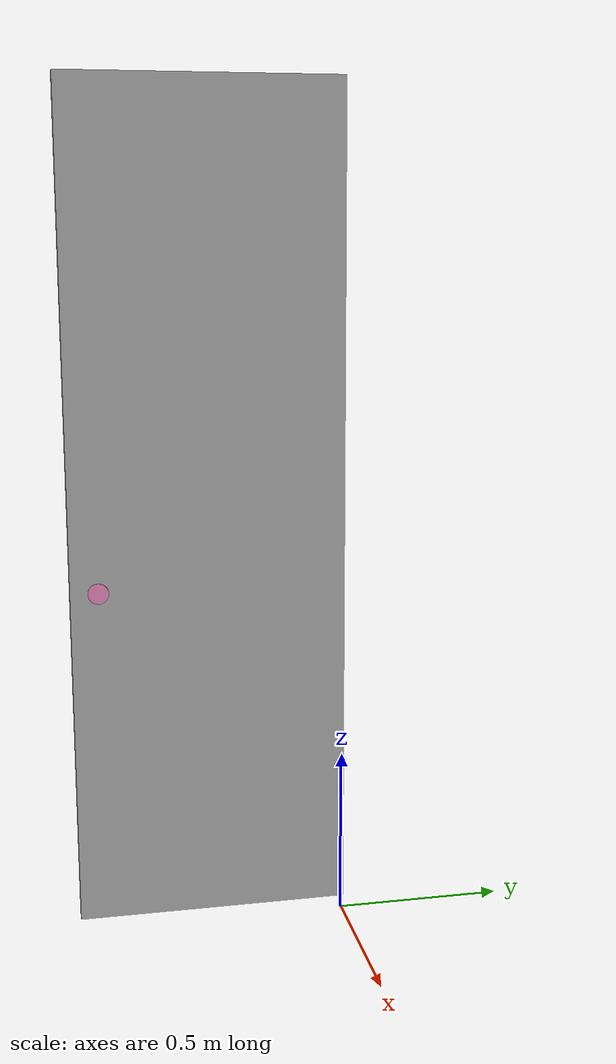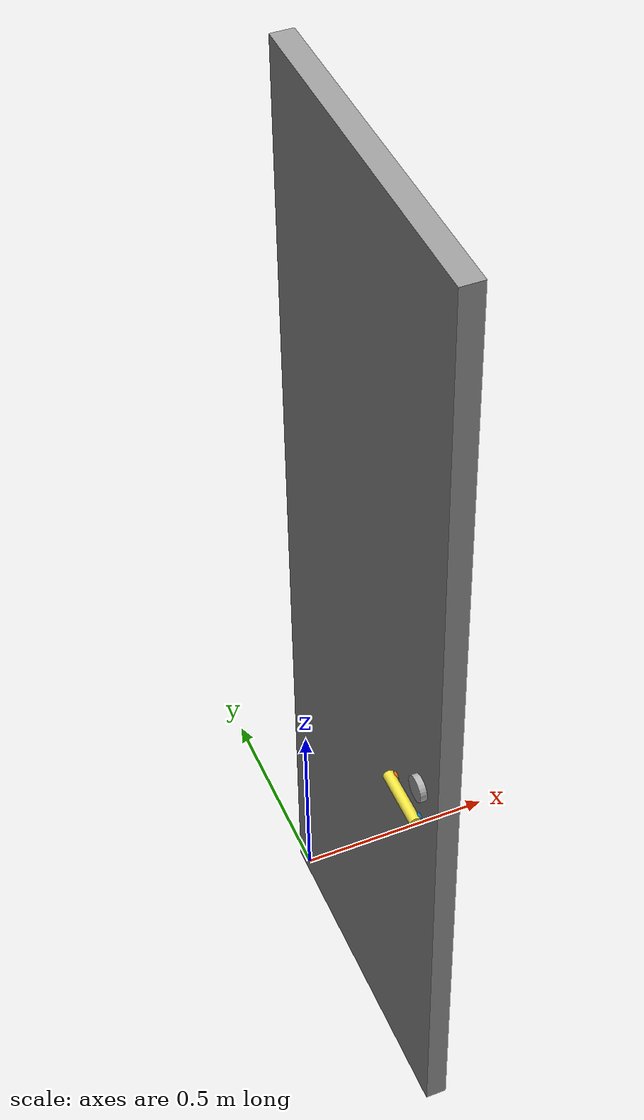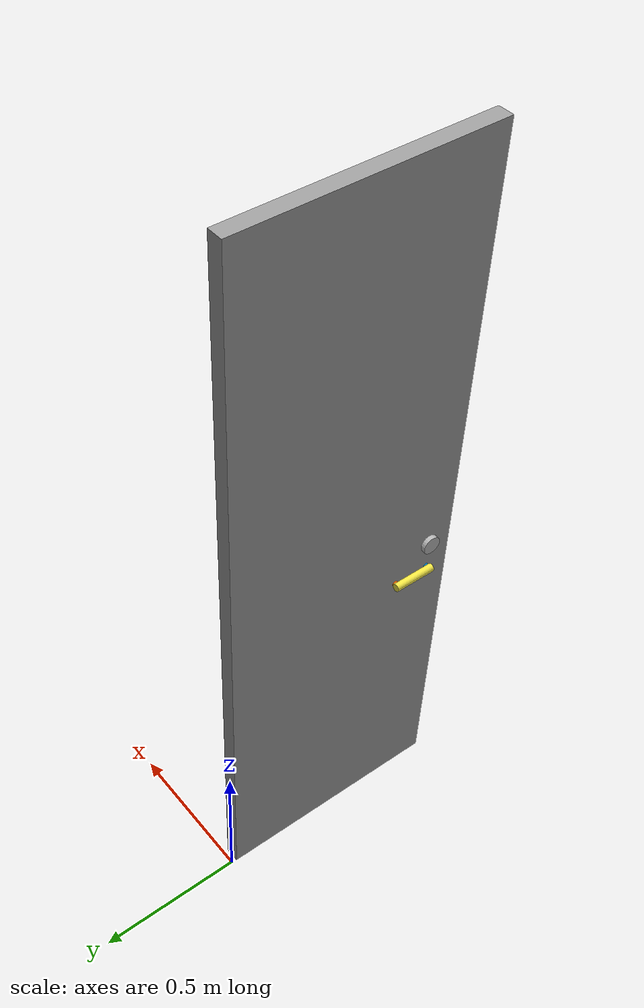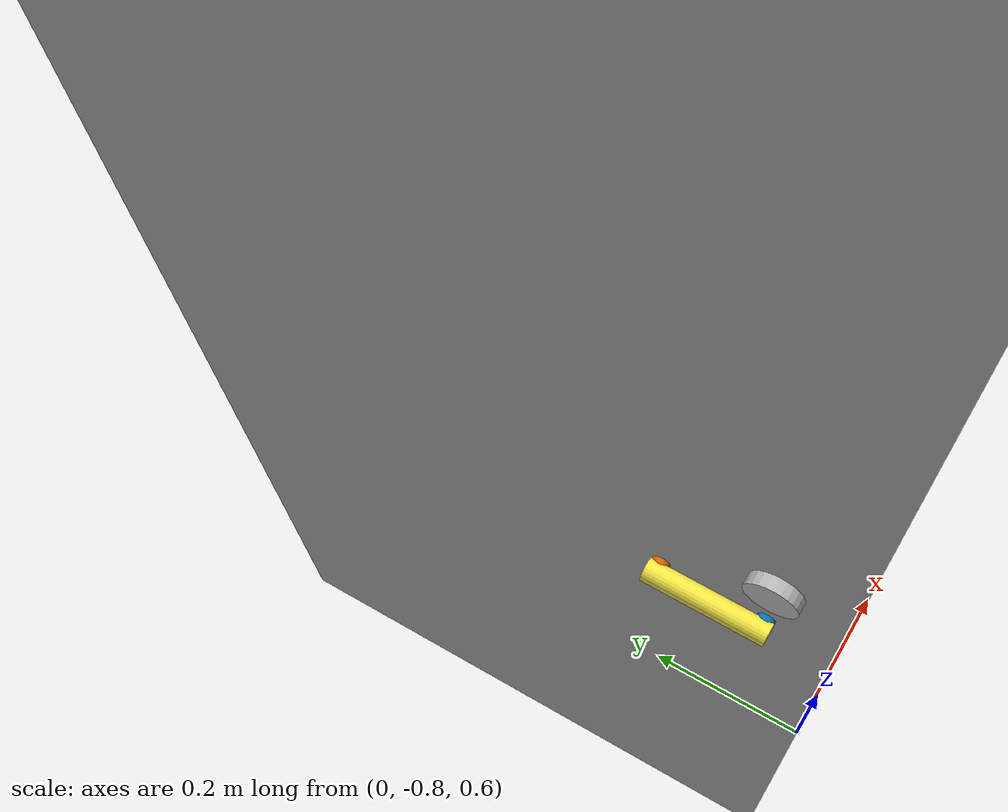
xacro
<?xml version="1.0"?>
<robot name="$(arg robot_name)" xmlns:xacro="http://www.ros.org/wiki/xacro">

  <!-- arguments passed in -->
  <xacro:arg name="door_bot_namespace" default="door_bot_ns" />
  <xacro:arg name="hinge_x" default="0" />
  <xacro:arg name="hinge_y" default="0" />
  <xacro:arg name="hinge_z" default="0" />
  <xacro:arg name="init_door_orientation" default="0" /> <!-- (rad) 0=door front perp. to X axis-->
  <xacro:arg name="door_width" default="0.80" />
  <xacro:arg name="door_height" default="2.43" />
  <xacro:arg name="door_thickness" default="0.05" />
  <xacro:arg name="door_width_collision_factor" default="0.90" />

  <!-- properties (variables) used throughout this file -->
  <xacro:property name="M_PI" value="3.1415926535897932" />
  <xacro:property name="width" value="$(arg door_width)" />
  <xacro:property name="height" value="$(arg door_height)" />
  <xacro:property name="thickness" value="$(arg door_thickness)" />
  <xacro:property name="handle_height" value="1.00" />
  <xacro:property name="handle_length" value="0.14" />
  <xacro:property name="width_collision_factor" value="$(arg door_width_collision_factor)" />

  <link name="world" />

  <joint name="floor_joint" type="fixed">
    <parent link="world" />
    <origin xyz="$(arg hinge_x) $(arg hinge_y) $(arg hinge_z)" rpy="0 0 0" />
    <child link="floor_link" />
  </joint>
  <link name="floor_link">
    <inertial>
      <mass value="100" />
      <inertia ixx="10" ixy="0"  ixz="0"
                        iyy="10" iyz="0"
                                 izz="10" />
    </inertial>
    <visual>
      <origin xyz="0 0 0" rpy="0 0 0" />
      <geometry name="floor_visual_geom">
        <box size="0.001 0.001 0.001" />
      </geometry>
    </visual>
    <collision>
      <origin xyz="0 0 0.001" rpy="0 0 0" />
      <geometry name="floor_collision_geom">
        <box size="0.001 0.001 0.001" />
      </geometry>
    </collision>
  </link>
  <gazebo reference="floor_link">
    <material>PR2/Grey</material>
    <mu1>50.0</mu1>
    <mu2>50.0</mu2>
    <kp>1000000000.0</kp>
    <kd>1.0</kd>
  </gazebo>

  <!-- the door itself -->
  <joint name="door_joint" type="continuous" >
    <parent link="floor_link" />
    <child link="door_link" />
    <origin xyz="0 0 0.05" rpy="0 0 $(arg init_door_orientation)" />
    <axis xyz="0 0 1" />
    <dynamics damping="0.7" />
  </joint>
  <link name="door_link">
    <inertial>
      <mass value="30" />
      <inertia  ixx="1.0" ixy="0.0"  ixz="0.0"
                          iyy="1.0"  iyz="0.0"
                                     izz="3.0" />
    </inertial>
    <visual >
      <origin xyz="0.0  ${-1.0*width/2.0}  ${height/2.0}" rpy="0 0 0" />
      <geometry name="sholder_roll_mesh_file">
        <box size="$(arg door_thickness) $(arg door_width) $(arg door_height)" />
      </geometry>
    </visual>
    <collision >
      <origin xyz="0.0  ${-1.0*width/2.0}  ${height/2.0}" rpy="0 0 0" />
      <geometry name="door_collision_geom">
        <box size="$(arg door_thickness) ${width_collision_factor*width} $(arg door_height)" />
      </geometry>
    </collision>
  </link>
  <gazebo reference="door_link">
    <material>PR2/Grey</material>
    <laserRetro>2000</laserRetro>
    <turnGravityOff>true</turnGravityOff>
    <selfCollide>false</selfCollide>
    <dampingFactor>0.01</dampingFactor>
  </gazebo>

  <!--  I have had trouble with the revolute type joints, so setting to fixed for now.
        This could be a gazebo 7 issue, or other error.   -->
  <joint name="handle_joint" type="fixed">
    <origin xyz="${-1.0*thickness+0.01} ${-0.90*width} ${handle_height}" rpy="${0*M_PI/2.0} 0 0" />
    <parent link="door_link" />
    <child link="handle_link" />
  </joint>
  <link name="handle_link">
    <inertial >
      <mass value="0.3" />
      <com xyz="0.0 ${handle_length/2-0.01} 0.0" />
      <inertia  ixx="0.01"  ixy="0.0"  ixz="0.0"
                            iyy="0.01" iyz="0.0"
                                       izz="0.01" />
    </inertial>
    <visual >
      <origin xyz="0.0 ${handle_length/2-0.01} 0.0" rpy="${1*M_PI/2} 0 0" />
      <geometry name="sholder_roll_mesh_file">
        <cylinder radius="0.013" length="${handle_length}" />
      </geometry>
    </visual>
    <collision >
      <origin xyz="0.0 ${handle_length/2-0.01} 0.0" rpy="${1*M_PI/2} 0 0" />
      <geometry name="handle_collision_geom">
        <cylinder radius="0.013" length="${handle_length}" />
      </geometry>
    </collision>
  </link>
  <gazebo reference="handle_link">
    <material>PR2/Handle</material>
    <laserRetro>3900.0</laserRetro>
    <mu1>50.0</mu1>
    <mu2>50.0</mu2>
    <kp>100000000.0</kp>
    <kd>1.0</kd>
    <turnGravityOff>true</turnGravityOff>
    <selfCollide>false</selfCollide>
    <dampingFactor>0.05</dampingFactor>
  </gazebo>

  <joint name="handle1_joint" type="fixed">
    <parent link="handle_link" />
    <origin xyz="0.0 0.0 0" rpy="0 0 0" />
    <child link="handle1_link" />
  </joint>
  <link name="handle1_link">
    <inertial >
      <mass value="0.1" />
      <com xyz="0.0 0.0 0.0" />
      <inertia  ixx="0.01"  ixy="0.0"  ixz="0.0"
                            iyy="0.01" iyz="0.0"
                                       izz="0.001" />
    </inertial>
    <visual >
      <origin xyz="0.025 0.0 0.0" rpy="0 ${1*M_PI/2.0} 0" />
      <geometry name="sholder_roll_mesh_file">
        <cylinder radius="0.01" length="0.05" />
      </geometry>
    </visual>
    <collision >
      <origin xyz="0.025 0.0 0.0" rpy="0 ${1*M_PI/2.0} 0" />
      <geometry name="handle1_collision_geom">
        <cylinder radius="0.01" length="0.05" />
      </geometry>
    </collision>
  </link>
  <gazebo reference="handle1_link">
    <material>PR2/Handle</material>
    <laserRetro>3900.0</laserRetro>
    <turnGravityOff>true</turnGravityOff>
    <selfCollide>false</selfCollide>
  </gazebo>

  <joint name="handle2_joint" type="fixed">
    <parent link="handle_link" />
    <origin xyz="0.0 0.12 0" rpy="0 0 0" />
    <child link="handle2_link" />
  </joint>
  <link name="handle2_link">
    <inertial >
      <mass value="0.1" />
      <com xyz="0.0 0.0 0.0" />
      <inertia  ixx="0.01"  ixy="0.0"  ixz="0.0"
                            iyy="0.01" iyz="0.0"
                                       izz="0.001" />
    </inertial>
    <visual >
      <origin xyz="0.025 0.0 0.0" rpy="0 ${1*M_PI/2.0} 0" />
      <geometry name="sholder_roll_mesh_file">
        <cylinder radius="0.01" length="0.05" />
      </geometry>
    </visual>
    <collision >
      <origin xyz="0.025 0.0 0.0" rpy="0 ${1*M_PI/2.0} 0" />
      <geometry name="handle2_collision_geom">
        <cylinder radius="0.01" length="0.05" />
      </geometry>
    </collision>
  </link>
  <gazebo reference="handle2_link">
    <material>PR2/Shiny</material>
    <laserRetro>3900.0</laserRetro>
    <turnGravityOff>true</turnGravityOff>
    <selfCollide>false</selfCollide>
  </gazebo>

  <joint name="handle3_joint" type="fixed">
    <parent link="handle_link" />
    <origin xyz="0.0 0.0 0" rpy="0 0 0" />
    <child link="handle3_link" />
  </joint>
  <link name="handle3_link">
    <inertial >
      <mass value="0.1" />
      <com xyz="0.0 0.0 0.0" />
      <inertia  ixx="0.01"  ixy="0.0"  ixz="0.0"
                            iyy="0.01" iyz="0.0"
                                       izz="0.001" />
    </inertial>
    <visual >
      <origin xyz="0.06 0.0 0.0" rpy="0 ${1*M_PI/2.0} 0" />
      <geometry name="sholder_roll_mesh_file">
        <cylinder radius="0.03" length="0.02" />
      </geometry>
    </visual>
    <collision >
      <origin xyz="0.06 0.0 0.0" rpy="0 ${1*M_PI/2.0} 0" />
      <geometry name="handle3_collision_geom">
        <cylinder radius="0.03" length="0.02" />
      </geometry>
    </collision>
  </link>
  <gazebo reference="handle3_link">
    <material>PR2/Shiny</material>
    <laserRetro>3900.0</laserRetro>
    <turnGravityOff>true</turnGravityOff>
    <selfCollide>false</selfCollide>
  </gazebo>

  <joint name="keyhole_joint" type="fixed">
    <parent link="door_link" />
    <origin xyz="${-1.0*thickness+0.02}  ${-0.90*width}  ${handle_height+0.10}" rpy="${0*M_PI/2.0} 0 0" />
    <child link="keyhole_link" />
  </joint>
  <link name="keyhole_link">
    <inertial >
      <mass value="0.1" />
      <com xyz="0.0 0.0 0.0" />
      <inertia  ixx="0.01"  ixy="0.0"  ixz="0.0"
                            iyy="0.01" iyz="0.0"
                                       izz="0.001" />
    </inertial>
    <visual >
      <origin xyz="0.0 0.0 0.0" rpy="0 ${1*M_PI/2.0} 0" />
      <geometry name="sholder_roll_mesh_file">
        <cylinder radius="0.03" length="0.02" />
      </geometry>
    </visual>
    <collision >
      <origin xyz="0.0 0.0 0.0" rpy="0 ${1*M_PI/2.0} 0" />
      <geometry name="keyhole_collision_geom">
        <cylinder radius="0.03" length="0.02" />
      </geometry>
    </collision>
  </link>
  <gazebo reference="keyhole_link">
    <material>PR2/Shiny</material>
    <laserRetro>3900.0</laserRetro>
    <turnGravityOff>true</turnGravityOff>
    <selfCollide>false</selfCollide>
  </gazebo>

  <!-- Control and transmission for the door axis joint -->
  <gazebo>
    <plugin name="gazebo_ros_control" filename="libgazebo_ros_control.so">
      <robotNamespace>$(arg door_bot_namespace)</robotNamespace>
      <robotSimType>gazebo_ros_control/DefaultRobotHWSim</robotSimType>
      <legacyModeNS>true</legacyModeNS>
    </plugin>
  </gazebo>

  <transmission name="tran1">
    <type>transmission_interface/SimpleTransmission</type>
    <joint name="door_joint">
      <hardwareInterface>hardware_interface/EffortJointInterface</hardwareInterface>
    </joint>
    <actuator name="door_motor">
      <hardwareInterface>hardware_interface/EffortJointInterface</hardwareInterface>
      <mechanicalReduction>1</mechanicalReduction>
    </actuator>
  </transmission>

</robot>
